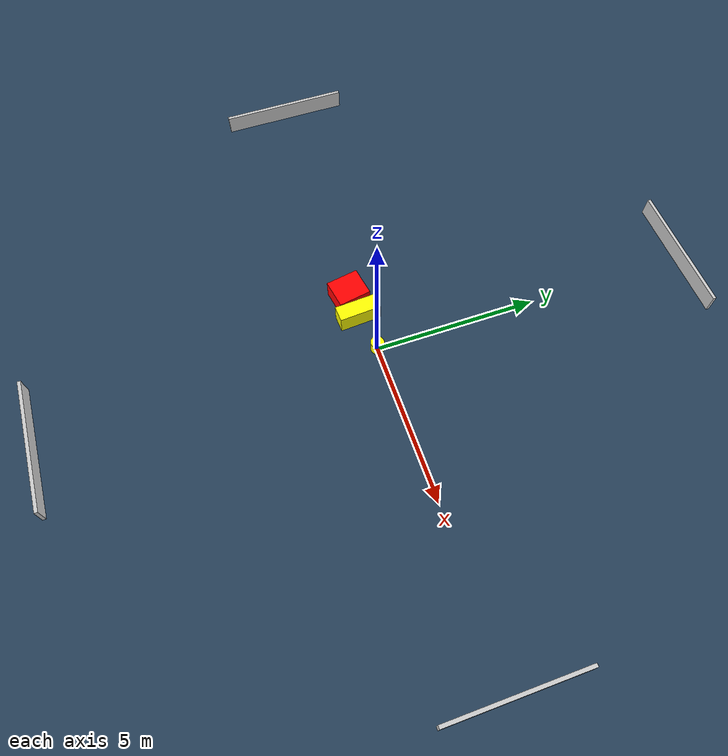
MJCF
<?xml version="1.0" ?>
<mujoco model="generated_environment">
  <option timestep="0.01" integrator="RK4" cone="elliptic"/>
  <default>
    <geom density="1"/>
  </default>
  <asset>
    <texture builtin="gradient" height="3072" name="skybox" rgb1="0.3 0.5 0.7" rgb2="0 0 0" type="skybox" width="512"/>
    <texture builtin="checker" height="300" name="groundplane" rgb1="0.2 0.3 0.4" rgb2="0.1 0.2 0.3" type="2d" width="300"/>
    <material name="groundplane" reflectance="0.2" texrepeat="5 5" texture="groundplane"/>
  </asset>
  <worldbody>
    <light dir="0 0 -1" directional="true" pos="0 0 1.5"/>
    <geom condim="3" friction="0.5 0.005 0.001" material="groundplane" name="floor" pos="0 0 0" size="0 0 0.05" type="plane"/>
    <body name="walls">
      <geom name="wall_1" condim="4" pos="-10.0 0.0 0.3" rgba="0.800000011920929 0.800000011920929 0.800000011920929 1.0" size="0.05 2.0 0.3" type="box"/>
      <geom name="wall_2" condim="4" pos="10.0 0.0 0.3" rgba="0.800000011920929 0.800000011920929 0.800000011920929 1.0" size="0.05 2.0 0.3" type="box"/>
      <geom name="wall_3" condim="4" pos="0.0 -10.0 0.3" rgba="0.800000011920929 0.800000011920929 0.800000011920929 1.0" size="2.0 0.05 0.3" type="box"/>
      <geom name="wall_4" condim="4" pos="0.0 10.0 0.3" rgba="0.800000011920929 0.800000011920929 0.800000011920929 1.0" size="2.0 0.05 0.3" type="box"/>
    </body>
    <body name="robot">
      <joint name="joint_x" type="slide" pos="0 0 0" axis="1 0 0"/>
      <joint name="joint_y" type="slide" pos="0 0 0" axis="0 1 0"/>
      <geom name="robot" type="cylinder" pos="0.0 0.0 0.2" size="0.2 0.2 0.0" mass="5.0" friction="1.0 0.005 0.0001" condim="4" rgba="1.0 1.0 0.0 1.0"/>
    </body>
    <body name="obstacle_1_movable">
      <geom name="obstacle_1_movable" condim="4" pos="-1.2111177587494748 -0.1984409618264222 0.3" euler="0 0 3.5263381736654287" friction="0.0 0.005 0.001" rgba="1.0 1.0 0.0 1.0" size="0.2448593931492528 0.6302016668620309 0.3" type="box" mass="0.1"/>
      <joint type="free"/>
    </body>
    <body name="obstacle_2_static">
      <geom name="obstacle_2_static" condim="4" pos="-1.9660375158976178 -0.24402015279682474 0.3" euler="0 0 190.03654999425905" friction="0.0 0.005 0.001" rgba="1.0 0.0 0.0 1.0" size="0.44263993648745453 0.4992717708409585 0.3" type="box"/>
    </body>
  </worldbody>
  <actuator>
    <motor name="actuator_x" joint="joint_x" gear="1" ctrlrange="-1 1"/>
    <motor name="actuator_y" joint="joint_y" gear="1" ctrlrange="-1 1"/>
  </actuator>
</mujoco>
